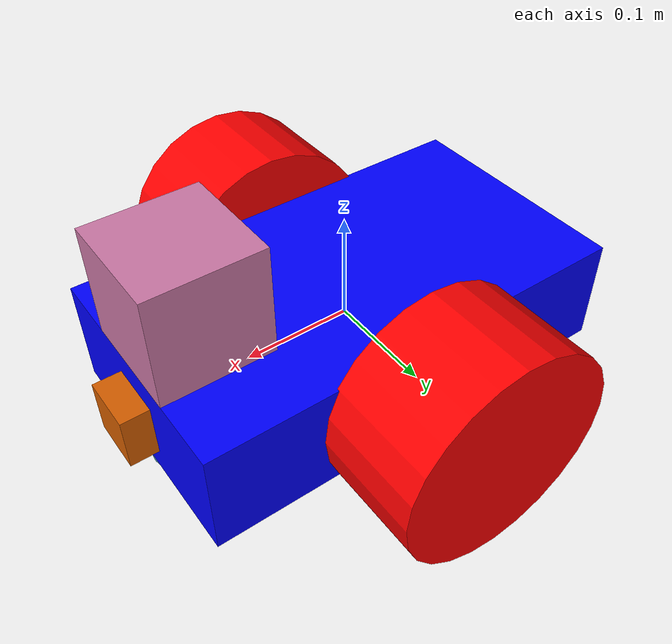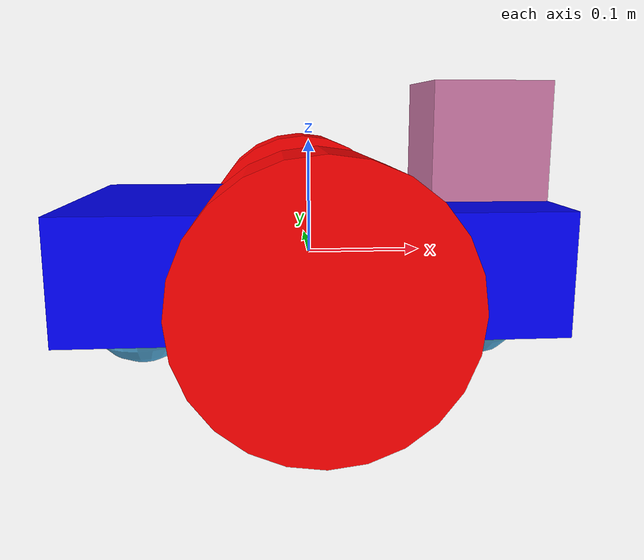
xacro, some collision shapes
<?xml version='1.0'?>

<robot name="my_robot" xmlns:xacro="http://www.ros.org/wiki/xacro">

  <xacro:include filename="$(find my_robot)/urdf/my_robot.gazebo" />

  <material name="blue">
    <color rgba= "0 0 1 1"/>
  </material>
  <material name="red">
    <color rgba= "1 0 0 1"/>
  </material>
  <material name="grey">
    <color rgba="0.75 0.75 0.75 1"/>
  </material>

  <link name="robot_footprint"></link>

  <joint name="robot_footprint_joint" type="fixed">
    <origin xyz="0 0 0" rpy="0 0 0" />
    <parent link="robot_footprint"/>
    <child link="chassis" />
  </joint>

  <link name='chassis'>
    <pose>0 0 0.1 0 0 0</pose>

    <inertial>
      <mass value="15.0"/>
      <origin xyz="0.0 0 0" rpy=" 0 0 0"/>
      <inertia
          ixx="0.1" ixy="0" ixz="0"
          iyy="0.1" iyz="0"
          izz="0.1"
      />
    </inertial>

    <collision name='collision'>
      <origin xyz="0 0 0" rpy=" 0 0 0"/>
      <geometry>
        <box size=".4 .25 .1"/>
      </geometry>
    </collision>

    <visual name='chassis_visual'>
      <origin xyz="0 0 0" rpy=" 0 0 0"/>
      <geometry>
        <box size=".4 .225 .1"/>
      </geometry>
      <material name="blue"/>
    </visual>

    <collision name='back_caster_collision'>
      <origin xyz="-0.15 0 -0.05" rpy=" 0 0 0"/>
      <geometry>
        <sphere radius="0.0499"/>
      </geometry>
    </collision>

    <visual name='back_caster_visual'>
      <origin xyz="-0.15 0 -0.05" rpy=" 0 0 0"/>
      <geometry>
        <sphere radius="0.05"/>
      </geometry>
    </visual>

    <collision name='front_caster_collision'>
      <origin xyz="0.15 0 -0.05" rpy=" 0 0 0"/>
      <geometry>
        <sphere radius="0.0499"/>
      </geometry>
    </collision>

    <visual name='front_caster_visual'>
      <origin xyz="0.15 0 -0.05" rpy=" 0 0 0"/>
      <geometry>
        <sphere radius="0.05"/>
      </geometry>
    </visual>

  </link>

  <link name="left_wheel">

    <collision name='left_wheel_collision'>
      <origin xyz="0 0 0" rpy=" 0 1.5707 1.5707"/>
      <geometry>
        <cylinder length="0.1" radius="0.1"/>
      </geometry>
    </collision>

    <inertial>
      <mass value="5.0"/>
      <origin xyz="0 0 0" rpy=" 0 1.5707 1.5707"/>
      <inertia
          ixx="0.1" ixy="0" ixz="0"
          iyy="0.1" iyz="0"
          izz="0.1"
      />
    </inertial>

    <visual name='left_wheel_visual'>
      <origin xyz="0 0 0" rpy=" 0 1.5707 1.5707"/>
      <geometry>
        <cylinder length="0.1" radius="0.1"/>
      </geometry>
      <material name="red"/>
    </visual>

  </link>

  <link name="right_wheel">

    <collision name='right_wheel_collision'>
      <origin xyz="0 0 0" rpy=" 0 1.5707 1.5707"/>
      <geometry>
        <cylinder length="0.1" radius="0.1"/>
      </geometry>
    </collision>

    <inertial>
      <mass value="5.0"/>
      <origin xyz="0 0 0" rpy=" 0 1.5707 1.5707"/>
      <inertia
          ixx="0.1" ixy="0" ixz="0"
          iyy="0.1" iyz="0"
          izz="0.1"
      />
    </inertial>

    <visual name='right_wheel_visual'>
      <origin xyz="0 0 0" rpy=" 0 1.5707 1.5707"/>
      <geometry>
        <cylinder length="0.1" radius="0.1"/>
      </geometry>
      <material name="red"/>
    </visual>

  </link>

  <joint type="continuous" name="left_wheel_hinge">
    <origin xyz="0 0.16 0" rpy="0 0 0"/>
    <child link="left_wheel"/>
    <parent link="chassis"/>
    <axis xyz="0 1 0" rpy="0 0 0"/>
    <limit effort="10000" velocity="1000"/>
    <dynamics damping="1.0" friction="1.0"/>
  </joint>

  <joint type="continuous" name="right_wheel_hinge">
    <origin xyz="0 -0.16 0" rpy="0 0 0"/>
    <child link="right_wheel"/>
    <parent link="chassis"/>
    <axis xyz="0 1 0" rpy="0 0 0"/>
    <limit effort="10000" velocity="1000"/>
    <dynamics damping="1.0" friction="1.0"/>
  </joint>

<!-- RGBD Kinect camera -->

  <link name="camera_link_optical">
  </link>

  <joint name="camera_optical_joint" type="fixed">
    <origin xyz="0 0 0" rpy="-1.5707 0 -1.5707"/>
    <parent link="camera"/>
    <child link="camera_link_optical"/>
  </joint>

<!-- End RGBD Kinect camera -->

  <link name="camera">

    <collision name='camera_collision'>
      <origin xyz="0 0 0" rpy=" 0 0 0"/>
      <geometry>
        <box size="0.05 0.05 0.05"/>
      </geometry>
    </collision>

    <inertial>
      <mass value="0.1"/>
      <origin xyz="0.05 0.05 0.05" rpy=" 0 0 0"/>
      <inertia
          ixx="1e-6" ixy="0" ixz="0"
          iyy="1e-6" iyz="0"
          izz="1e-6"
      />
    </inertial>

    <visual name='camera_visual'>
      <origin xyz="0 0 0" rpy=" 0 0 0"/>
      <geometry>
        <box size="0.05 0.05 0.05"/>
      </geometry>
    </visual>

  </link>

  <joint type="fixed" name="camera_joint">
    <origin xyz="0.2 0 0" rpy="0 0 0"/>
    <child link="camera"/>
    <parent link="chassis"/>
    <axis xyz="0 1 0" rpy="0 0 0"/>
  </joint>

   <link name="hokuyo">

    <collision name='hokuyo_collision'>
      <origin xyz="0 0 0" rpy=" 0 0 0"/>
      <geometry>
        <box size="0.1 0.1 0.1"/>
      </geometry>
    </collision>

    <visual name='hokuyo_visual'>
      <origin xyz="0 0 0" rpy=" 0 0 0"/>
      <geometry>
        <mesh filename="package://my_robot/meshes/hokuyo.dae"/>
      </geometry>
    </visual>

    <inertial>
      <mass value="1e-5"/>
      <origin xyz="0 0 0" rpy=" 0 0 0"/>
      <inertia
          ixx="1e-6" ixy="0" ixz="0"
          iyy="1e-6" iyz="0"
          izz="1e-6"
      />
    </inertial>

  </link>

 <joint type="fixed" name="hokuyo_joint">
    <origin xyz="0.15 0 0.1" rpy="0 0 0"/>
    <child link="hokuyo"/>
    <parent link="chassis"/>
    <axis xyz="0 1 0" rpy="0 0 0"/>
  </joint>

</robot>
